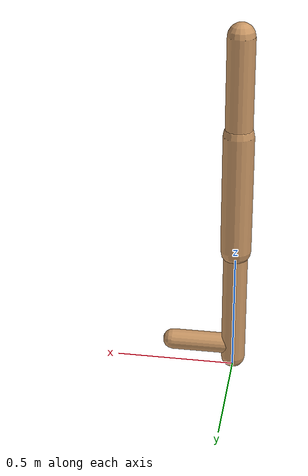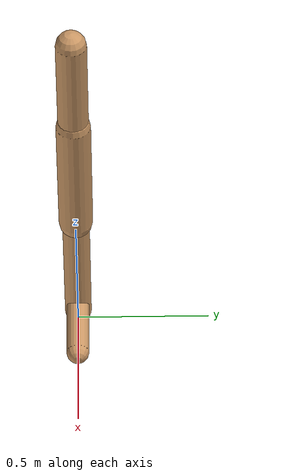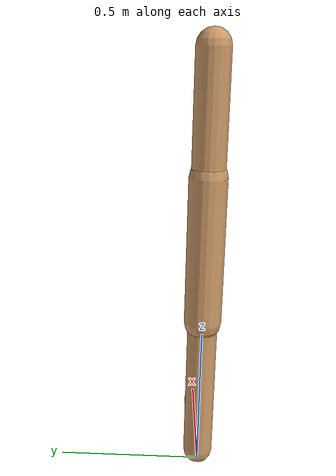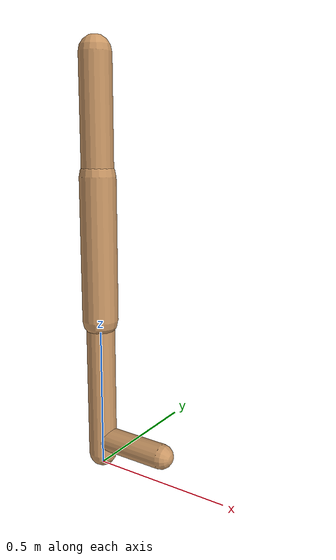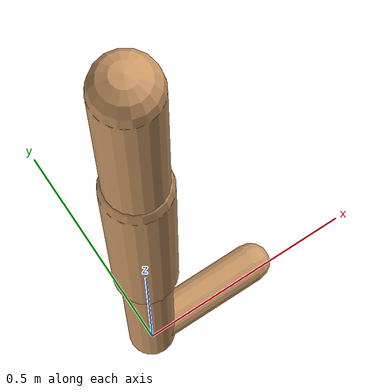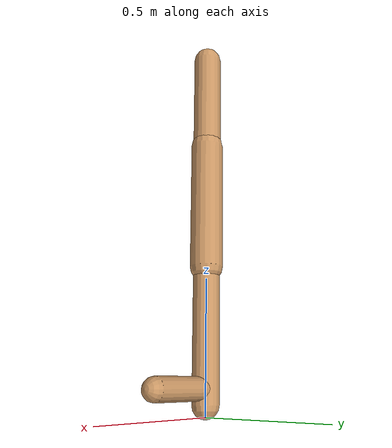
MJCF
<mujoco model="walker2d">
  <compiler angle="degree" coordinate="global" inertiafromgeom="true" />
  <default>
    <joint armature="0.01" damping=".1" limited="true" />
    <geom conaffinity="0" condim="3" contype="1" density="1000" friction="0.8 .1 .1" rgba="0.8 0.6 .4 1" />
  </default>
  <option integrator="RK4" timestep="0.002" />
  <worldbody>

    <body name="torso" pos="0 0 0.1086602678429107">
      <joint armature="0" axis="1 0 0" damping="0" limited="false" name="ignorex" pos="0 0 0" stiffness="0" type="slide" />
      <joint armature="0" axis="0 0 1" damping="0" limited="false" name="ignorez" pos="0 0 0" ref="1.25" stiffness="0" type="slide" />
      <joint armature="0" axis="0 1 0" damping="0" limited="false" name="ignorey" pos="0 0 0" stiffness="0" type="hinge" />
      <geom fromto="0 0 1.45 0 0 1.05" name="torso_geom" size="0.055579798059843546" type="capsule" />
      <body name="thigh">
        <joint axis="0 -1 0" name="thigh_joint" pos="0 0 1.05" range="-150 0" type="hinge" />
        <geom fromto="0.0 0.0 1.05 0.0 0.0 0.5485293468112528" name="thigh_geom" size="0.06314316558633092" type="capsule" />
        <body name="leg" pos="0.0 0.0 -0.05147065318874722">
          <joint axis="0 -1 0" name="leg_joint" pos="0 0 0.6" range="-150 0" type="hinge" />
          <geom fromto="0.0 0.0 0.6 0.0 0.0 0.042810385345836484" name="leg_geom" size="0.050514532469064725" type="capsule" />
          <body name="foot" pos="0.0 0.0 -0.05718961465416352">
            <joint axis="0 -1 0" name="foot_joint" pos="0 0 0.1" range="-45 45" type="hinge" />
            <geom fromto="-0.0 0.0 0.1 0.25880228733861943 0.0 0.1" name="foot_geom" size="0.043058384691437745" type="capsule" />
          </body>
        </body>
      </body>

      <body name="thigh_left">
        <joint axis="0 -1 0" name="thigh_left_joint" pos="0 0 1.05" range="-150 0" type="hinge" />
        <geom fromto="0.0 0.0 1.05 0.0 0.0 0.5485293468112528" name="thigh_left_geom" rgba=".7 .3 .6 1" size="0.06314316558633092" type="capsule" />
        <body name="leg_left" pos="0.0 0.0 -0.05147065318874722">
          <joint axis="0 -1 0" name="leg_left_joint" pos="0 0 0.6" range="-150 0" type="hinge" />
          <geom fromto="0.0 0.0 0.6 0.0 0.0 0.042810385345836484" name="leg_left_geom" rgba=".7 .3 .6 1" size="0.050514532469064725" type="capsule" />
          <body name="foot_left" pos="0.0 0.0 -0.05718961465416352">
            <joint axis="0 -1 0" name="foot_left_joint" pos="0 0 0.1" range="-45 45" type="hinge" />
            <geom fromto="-0.0 0.0 0.1 0.25880228733861943 0.0 0.1" name="foot_left_geom" rgba=".7 .3 .6 1" size="0.043058384691437745" type="capsule" />
          </body>
        </body>
      </body>
    </body>
  </worldbody>
  <actuator>

    <motor ctrllimited="true" ctrlrange="-1.0 1.0" gear="100" joint="thigh_joint" />
    <motor ctrllimited="true" ctrlrange="-1.0 1.0" gear="100" joint="leg_joint" />
    <motor ctrllimited="true" ctrlrange="-1.0 1.0" gear="100" joint="foot_joint" />
    <motor ctrllimited="true" ctrlrange="-1.0 1.0" gear="100" joint="thigh_left_joint" />
    <motor ctrllimited="true" ctrlrange="-1.0 1.0" gear="100" joint="leg_left_joint" />
    <motor ctrllimited="true" ctrlrange="-1.0 1.0" gear="100" joint="foot_left_joint" />

  </actuator>
</mujoco>
